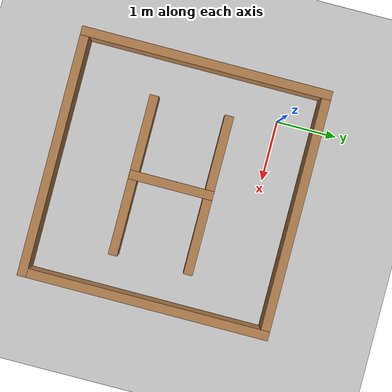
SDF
<sdf version="1.6">
 <world name="default">
  <light name="sun" type="directional">
   <pose>0 0 10 0 -0 0</pose>
   <diffuse>0.8 0.8 0.8 1</diffuse>
   <specular>0.2 0.2 0.2 1</specular>
   <attenuation>
    <range>1000</range>
    <constant>0.9</constant>
    <linear>0.01</linear>
    <quadratic>0.001</quadratic>
   </attenuation>
   <direction>-0.5 0.1 -0.9</direction>
  </light>
  <model name="ground_plane">
   <static>1</static>
   <link name="link">
    <collision name="collision">
     <geometry><plane><normal>0 0 1</normal><size>100 100</size></plane></geometry>
     <surface><friction><ode><mu>100</mu><mu2>50</mu2></ode></friction></surface>
    </collision>
    <visual name="visual">
     <cast_shadows>0</cast_shadows>
     <geometry><plane><normal>0 0 1</normal><size>100 100</size></plane></geometry>
     <material>
      <script><uri>file://media/materials/scripts/gazebo.material</uri><name>Gazebo/Grey</name></script>
     </material>
    </visual>
   </link>
  </model>
  <gravity>0 0 -9.8</gravity>
  <magnetic_field>6e-06 2.3e-05 -4.2e-05</magnetic_field>
  <atmosphere type="adiabatic"/>
  <physics name="default_physics" default="0" type="ode">
   <max_step_size>0.001</max_step_size>
   <real_time_factor>1</real_time_factor>
   <real_time_update_rate>1000</real_time_update_rate>
  </physics>
  <scene><ambient>0.4 0.4 0.4 1</ambient><background>0.7 0.7 0.7 1</background><shadows>1</shadows></scene>
  <audio><device>default</device></audio>
  <spherical_coordinates>
   <surface_model>EARTH_WGS84</surface_model>
   <latitude_deg>0</latitude_deg>
   <longitude_deg>0</longitude_deg>
   <elevation>0</elevation>
   <heading_deg>0</heading_deg>
  </spherical_coordinates>
  <model name="changdi">
   <pose>1.41059 -1.37705 0 0 0 -1.57342</pose>
   <link name="Wall_0">
    <collision name="Wall_0_Collision">
     <geometry><box><size>4.17011 0.15 0.3</size></box></geometry>
     <pose>0 0 0.15 0 -0 0</pose>
    </collision>
    <visual name="Wall_0_Visual">
     <pose>0 0 0.15 0 -0 0</pose>
     <geometry><box><size>4.17011 0.15 0.3</size></box></geometry>
     <material>
      <script><uri>file://media/materials/scripts/gazebo.material</uri><name>Gazebo/Wood</name></script>
      <ambient>1 1 1 1</ambient>
     </material>
     <meta><layer>0</layer></meta>
    </visual>
    <pose>-0 -2 0 0 -0 0</pose>
   </link>
   <link name="Wall_13">
    <collision name="Wall_13_Collision">
     <geometry><box><size>1.4 0.15 0.3</size></box></geometry>
     <pose>0 0 0.15 0 -0 0</pose>
    </collision>
    <visual name="Wall_13_Visual">
     <pose>0 0 0.15 0 -0 0</pose>
     <geometry><box><size>1.4 0.15 0.3</size></box></geometry>
     <material>
      <script><uri>file://media/materials/scripts/gazebo.material</uri><name>Gazebo/Wood</name></script>
      <ambient>1 1 1 1</ambient>
     </material>
     <meta><layer>0</layer></meta>
    </visual>
    <pose>0.051786 0.045 0 0 -0 0</pose>
   </link>
   <link name="Wall_26">
    <collision name="Wall_26_Collision">
     <geometry><box><size>1.4 0.15 0.3</size></box></geometry>
     <pose>0 0 0.15 0 -0 0</pose>
    </collision>
    <visual name="Wall_26_Visual">
     <pose>0 0 0.15 0 -0 0</pose>
     <geometry><box><size>1.4 0.15 0.3</size></box></geometry>
     <material>
      <script><uri>file://media/materials/scripts/gazebo.material</uri><name>Gazebo/Wood</name></script>
      <ambient>1 1 1 1</ambient>
     </material>
     <meta><layer>0</layer></meta>
    </visual>
    <pose>0.677943 0.674 0 0 -0 -1.5708</pose>
   </link>
   <link name="Wall_28">
    <collision name="Wall_28_Collision">
     <geometry><box><size>1.4 0.15 0.3</size></box></geometry>
     <pose>0 0 0.15 0 -0 0</pose>
    </collision>
    <visual name="Wall_28_Visual">
     <pose>0 0 0.15 0 -0 0</pose>
     <geometry><box><size>1.4 0.15 0.3</size></box></geometry>
     <material>
      <script><uri>file://media/materials/scripts/gazebo.material</uri><name>Gazebo/Wood</name></script>
      <ambient>1 1 1 1</ambient>
     </material>
     <meta><layer>0</layer></meta>
    </visual>
    <pose>-0.574057 0.671 0 0 -0 -1.5708</pose>
   </link>
   <link name="Wall_3">
    <collision name="Wall_3_Collision">
     <geometry><box><size>4.15 0.15 0.3</size></box></geometry>
     <pose>0 0 0.15 0 -0 0</pose>
    </collision>
    <visual name="Wall_3_Visual">
     <pose>0 0 0.15 0 -0 0</pose>
     <geometry><box><size>4.15 0.15 0.3</size></box></geometry>
     <material>
      <script><uri>file://media/materials/scripts/gazebo.material</uri><name>Gazebo/Wood</name></script>
      <ambient>1 1 1 1</ambient>
     </material>
     <meta><layer>0</layer></meta>
    </visual>
    <pose>2.01006 0 0 0 -0 1.5708</pose>
   </link>
   <link name="Wall_30">
    <collision name="Wall_30_Collision">
     <geometry><box><size>1.4 0.15 0.3</size></box></geometry>
     <pose>0 0 0.15 0 -0 0</pose>
    </collision>
    <visual name="Wall_30_Visual">
     <pose>0 0 0.15 0 -0 0</pose>
     <geometry><box><size>1.4 0.15 0.3</size></box></geometry>
     <material>
      <script><uri>file://media/materials/scripts/gazebo.material</uri><name>Gazebo/Wood</name></script>
      <ambient>1 1 1 1</ambient>
     </material>
     <meta><layer>0</layer></meta>
    </visual>
    <pose>-0.573214 -0.571 0 0 -0 -1.5708</pose>
   </link>
   <link name="Wall_32">
    <collision name="Wall_32_Collision">
     <geometry><box><size>1.4 0.15 0.3</size></box></geometry>
     <pose>0 0 0.15 0 -0 0</pose>
    </collision>
    <visual name="Wall_32_Visual">
     <pose>0 0 0.15 0 -0 0</pose>
     <geometry><box><size>1.4 0.15 0.3</size></box></geometry>
     <material>
      <script><uri>file://media/materials/scripts/gazebo.material</uri><name>Gazebo/Wood</name></script>
      <ambient>1 1 1 1</ambient>
     </material>
     <meta><layer>0</layer></meta>
    </visual>
    <pose>0.678101 -0.584056 0 0 -0 -1.5708</pose>
   </link>
   <link name="Wall_5">
    <collision name="Wall_5_Collision">
     <geometry><box><size>4.17011 0.15 0.3</size></box></geometry>
     <pose>0 0 0.15 0 -0 0</pose>
    </collision>
    <visual name="Wall_5_Visual">
     <pose>0 0 0.15 0 -0 0</pose>
     <geometry><box><size>4.17011 0.15 0.3</size></box></geometry>
     <material>
      <script><uri>file://media/materials/scripts/gazebo.material</uri><name>Gazebo/Wood</name></script>
      <ambient>1 1 1 1</ambient>
     </material>
     <meta><layer>0</layer></meta>
    </visual>
    <pose>-0 2 0 0 -0 3.14159</pose>
   </link>
   <link name="Wall_7">
    <collision name="Wall_7_Collision">
     <geometry><box><size>4.15 0.15 0.3</size></box></geometry>
     <pose>0 0 0.15 0 -0 0</pose>
    </collision>
    <visual name="Wall_7_Visual">
     <pose>0 0 0.15 0 -0 0</pose>
     <geometry><box><size>4.15 0.15 0.3</size></box></geometry>
     <material>
      <script><uri>file://media/materials/scripts/gazebo.material</uri><name>Gazebo/Wood</name></script>
      <ambient>1 1 1 1</ambient>
     </material>
     <meta><layer>0</layer></meta>
    </visual>
    <pose>-2.01006 0 0 0 -0 -1.5708</pose>
   </link>
   <static>1</static>
  </model>
 </world>
</sdf>
